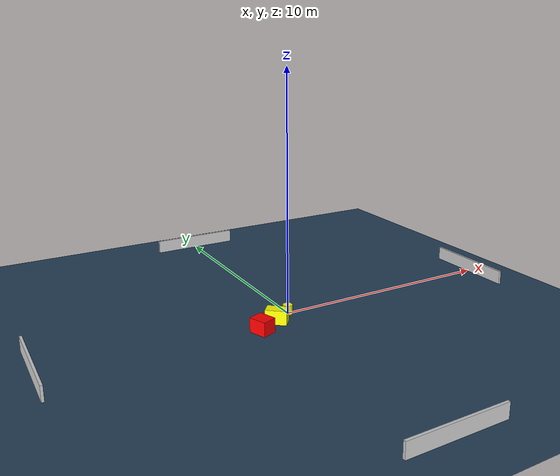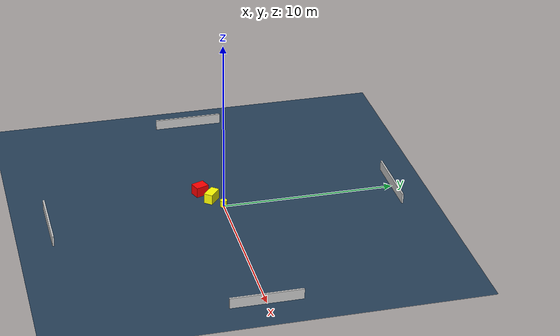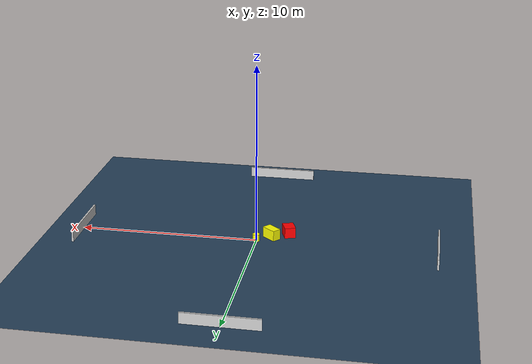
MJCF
<?xml version="1.0" ?>
<mujoco model="generated_environment">
  <option timestep="0.01" integrator="RK4" cone="elliptic"/>
  <default>
    <geom density="1"/>
  </default>
  <asset>
    <texture builtin="gradient" height="3072" name="skybox" rgb1="0.3 0.5 0.7" rgb2="0 0 0" type="skybox" width="512"/>
    <texture builtin="checker" height="300" name="groundplane" rgb1="0.2 0.3 0.4" rgb2="0.1 0.2 0.3" type="2d" width="300"/>
    <material name="groundplane" reflectance="0.2" texrepeat="5 5" texture="groundplane"/>
  </asset>
  <worldbody>
    <light dir="0 0 -1" directional="true" pos="0 0 1.5"/>
    <geom condim="3" friction="0.5 0.005 0.001" material="groundplane" name="floor" pos="0 0 0" size="0 0 0.05" type="plane"/>
    <body name="walls">
      <geom name="wall_1" condim="4" pos="-10.0 0.0 0.3" rgba="0.800000011920929 0.800000011920929 0.800000011920929 1.0" size="0.05 2.0 0.3" type="box"/>
      <geom name="wall_2" condim="4" pos="10.0 0.0 0.3" rgba="0.800000011920929 0.800000011920929 0.800000011920929 1.0" size="0.05 2.0 0.3" type="box"/>
      <geom name="wall_3" condim="4" pos="0.0 -10.0 0.3" rgba="0.800000011920929 0.800000011920929 0.800000011920929 1.0" size="2.0 0.05 0.3" type="box"/>
      <geom name="wall_4" condim="4" pos="0.0 10.0 0.3" rgba="0.800000011920929 0.800000011920929 0.800000011920929 1.0" size="2.0 0.05 0.3" type="box"/>
    </body>
    <body name="robot">
      <joint name="joint_x" type="slide" pos="0 0 0" axis="1 0 0"/>
      <joint name="joint_y" type="slide" pos="0 0 0" axis="0 1 0"/>
      <geom name="robot" type="cylinder" pos="0.0 0.0 0.2" size="0.2 0.2 0.0" mass="5.0" friction="1.0 0.005 0.0001" condim="4" rgba="1.0 1.0 0.0 1.0"/>
    </body>
    <body name="obstacle_1_movable">
      <geom name="obstacle_1_movable" condim="4" pos="-0.7879813861775428 -0.5258824414084903 0.3" euler="0 0 139.5459653520155" friction="0.0 0.005 0.001" rgba="1.0 1.0 0.0 1.0" size="0.4377697391164521 0.25239712639591977 0.3" type="box" mass="0.1"/>
      <joint type="free"/>
    </body>
    <body name="obstacle_2_static">
      <geom name="obstacle_2_static" condim="4" pos="-1.6899441086656326 -1.0200380170665497 0.3" euler="0 0 19.853522843075318" friction="0.0 0.005 0.001" rgba="1.0 0.0 0.0 1.0" size="0.3095390041004636 0.38409493581018816 0.3" type="box"/>
    </body>
  </worldbody>
  <actuator>
    <motor name="actuator_x" joint="joint_x" gear="1" ctrlrange="-1 1"/>
    <motor name="actuator_y" joint="joint_y" gear="1" ctrlrange="-1 1"/>
  </actuator>
</mujoco>
